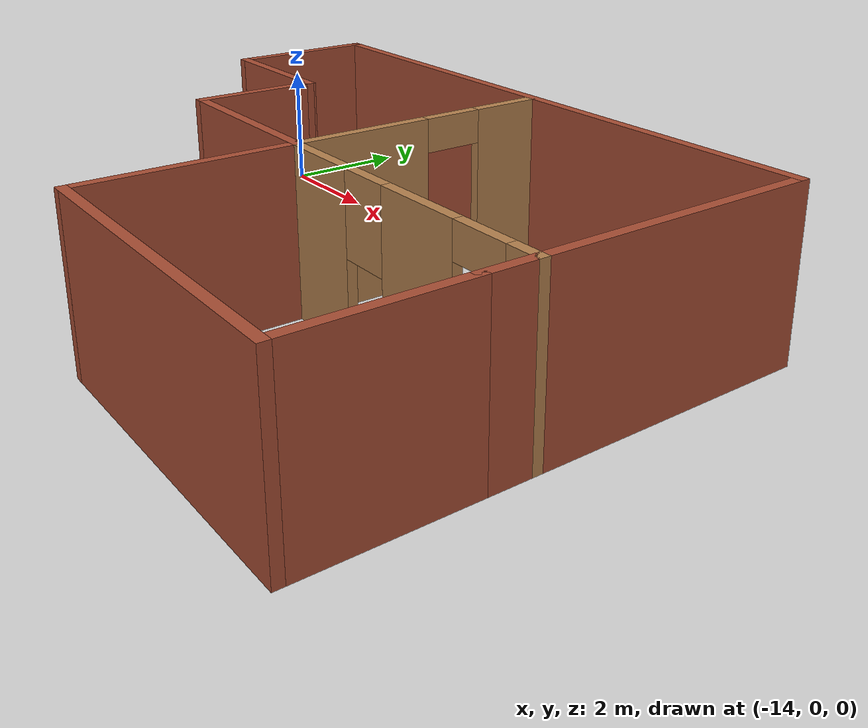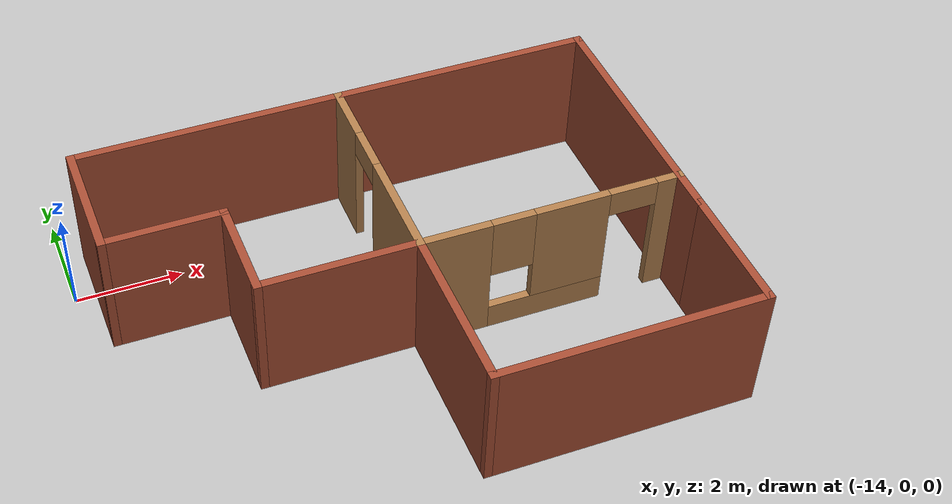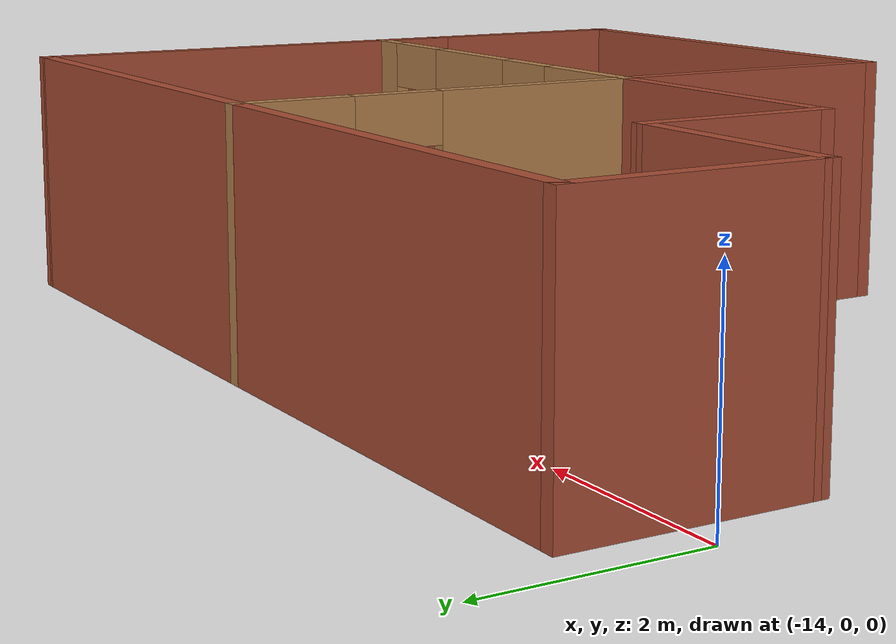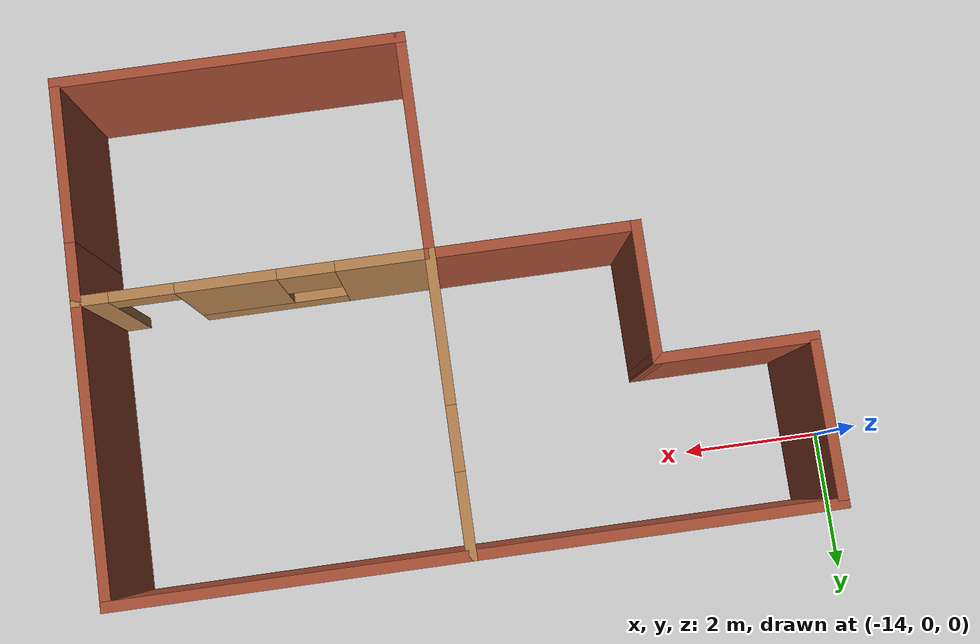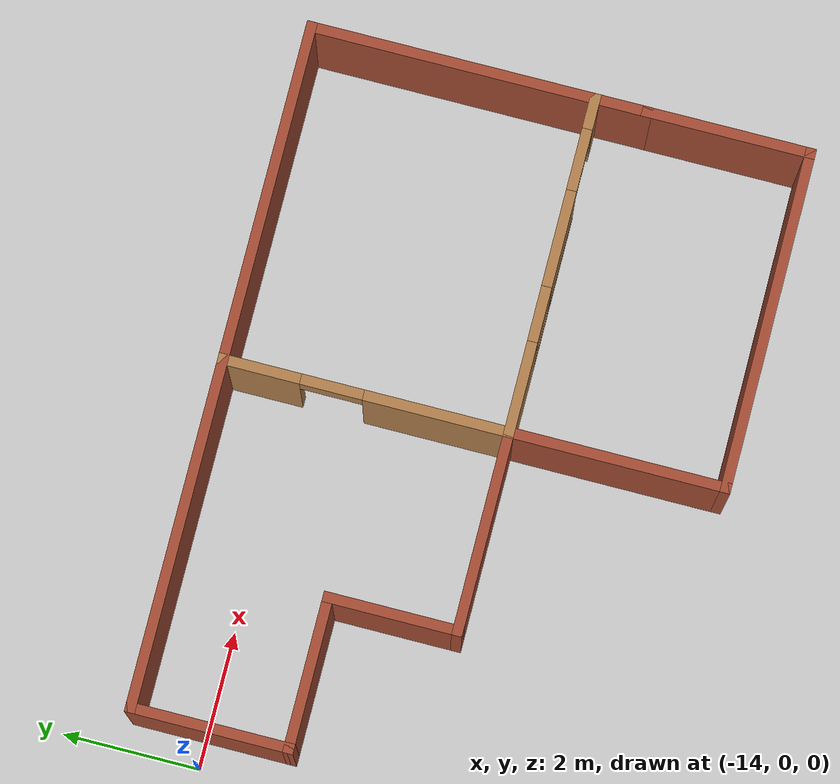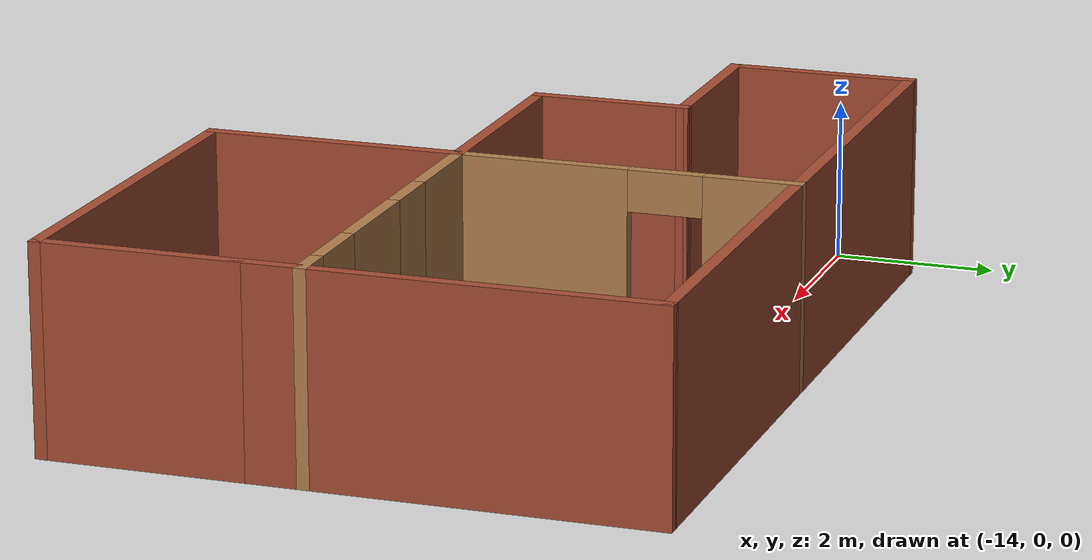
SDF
<?xml version='1.0'?>
<sdf version='1.6'>
  <model name='mybuilding'>
    <pose frame=''>-8.61188 -2.60356 0 0 -0 0</pose>
    <link name='Wall_10'>
      <collision name='Wall_10_Collision'>
        <geometry>
          <box>
            <size>2.30025 0.15 2.5</size>
          </box>
        </geometry>
        <pose frame=''>0 0 1.25 0 -0 0</pose>
      </collision>
      <visual name='Wall_10_Visual'>
        <pose frame=''>0 0 1.25 0 -0 0</pose>
        <geometry>
          <box>
            <size>2.30025 0.15 2.5</size>
          </box>
        </geometry>
        <material>
          <script>
            <uri>file://media/materials/scripts/gazebo.material</uri>
            <name>Gazebo/Bricks</name>
          </script>
          <ambient>1 1 1 1</ambient>
        </material>
        <meta>
          <layer>0</layer>
        </meta>
      </visual>
      <pose frame=''>-3.84999 1.34978 0 0 0 -3.14139</pose>
    </link>
    <link name='Wall_11'>
      <collision name='Wall_11_Collision'>
        <geometry>
          <box>
            <size>2.40056 0.15 2.5</size>
          </box>
        </geometry>
        <pose frame=''>0 0 1.25 0 -0 0</pose>
      </collision>
      <visual name='Wall_11_Visual'>
        <pose frame=''>0 0 1.25 0 -0 0</pose>
        <geometry>
          <box>
            <size>2.40056 0.15 2.5</size>
          </box>
        </geometry>
        <material>
          <script>
            <uri>file://media/materials/scripts/gazebo.material</uri>
            <name>Gazebo/Bricks</name>
          </script>
          <ambient>1 1 1 1</ambient>
        </material>
        <meta>
          <layer>0</layer>
        </meta>
      </visual>
      <pose frame=''>-4.92512 2.47456 0 0 -0 1.5708</pose>
    </link>
    <link name='Wall_13'>
      <pose frame=''>2.50013 -0.500002 0 0 -0 0</pose>
      <visual name='Wall_13_Visual_0'>
        <pose frame=''>-1.80816 0 1.25 0 -0 0</pose>
        <geometry>
          <box>
            <size>1.38368 0.15 2.5</size>
          </box>
        </geometry>
        <material>
          <script>
            <uri>file://media/materials/scripts/gazebo.material</uri>
            <name>Gazebo/Wood</name>
          </script>
          <ambient>1 1 1 1</ambient>
        </material>
        <meta>
          <layer>0</layer>
        </meta>
      </visual>
      <collision name='Wall_13_Collision_0'>
        <geometry>
          <box>
            <size>1.38368 0.15 2.5</size>
          </box>
        </geometry>
        <pose frame=''>-1.80816 0 1.25 0 -0 0</pose>
      </collision>
      <visual name='Wall_13_Visual_1'>
        <pose frame=''>2.24096 0 1.25 0 -0 0</pose>
        <geometry>
          <box>
            <size>0.518074 0.15 2.5</size>
          </box>
        </geometry>
        <material>
          <script>
            <uri>file://media/materials/scripts/gazebo.material</uri>
            <name>Gazebo/Wood</name>
          </script>
          <ambient>1 1 1 1</ambient>
        </material>
        <meta>
          <layer>0</layer>
        </meta>
      </visual>
      <collision name='Wall_13_Collision_1'>
        <geometry>
          <box>
            <size>0.518074 0.15 2.5</size>
          </box>
        </geometry>
        <pose frame=''>2.24096 0 1.25 0 -0 0</pose>
      </collision>
      <visual name='Wall_13_Visual_2'>
        <pose frame=''>-0.017199 0 0.25 0 -0 0</pose>
        <geometry>
          <box>
            <size>2.19825 0.15 0.5</size>
          </box>
        </geometry>
        <material>
          <script>
            <uri>file://media/materials/scripts/gazebo.material</uri>
            <name>Gazebo/Wood</name>
          </script>
          <ambient>1 1 1 1</ambient>
        </material>
        <meta>
          <layer>0</layer>
        </meta>
      </visual>
      <collision name='Wall_13_Collision_2'>
        <geometry>
          <box>
            <size>2.19825 0.15 0.5</size>
          </box>
        </geometry>
        <pose frame=''>-0.017199 0 0.25 0 -0 0</pose>
      </collision>
      <visual name='Wall_13_Visual_3'>
        <pose frame=''>0.382801 0 1.5 0 -0 0</pose>
        <geometry>
          <box>
            <size>1.39825 0.15 2</size>
          </box>
        </geometry>
        <material>
          <script>
            <uri>file://media/materials/scripts/gazebo.material</uri>
            <name>Gazebo/Wood</name>
          </script>
          <ambient>1 1 1 1</ambient>
        </material>
        <meta>
          <layer>0</layer>
        </meta>
      </visual>
      <collision name='Wall_13_Collision_3'>
        <geometry>
          <box>
            <size>1.39825 0.15 2</size>
          </box>
        </geometry>
        <pose frame=''>0.382801 0 1.5 0 -0 0</pose>
      </collision>
      <visual name='Wall_13_Visual_4'>
        <pose frame=''>-0.716324 0 1.9 0 -0 0</pose>
        <geometry>
          <box>
            <size>0.8 0.15 1.2</size>
          </box>
        </geometry>
        <material>
          <script>
            <uri>file://media/materials/scripts/gazebo.material</uri>
            <name>Gazebo/Wood</name>
          </script>
          <ambient>1 1 1 1</ambient>
        </material>
        <meta>
          <layer>0</layer>
        </meta>
      </visual>
      <collision name='Wall_13_Collision_4'>
        <geometry>
          <box>
            <size>0.8 0.15 1.2</size>
          </box>
        </geometry>
        <pose frame=''>-0.716324 0 1.9 0 -0 0</pose>
      </collision>
      <visual name='Wall_13_Visual_5'>
        <pose frame=''>1.53193 0 2.25 0 -0 0</pose>
        <geometry>
          <box>
            <size>0.9 0.15 0.5</size>
          </box>
        </geometry>
        <material>
          <script>
            <uri>file://media/materials/scripts/gazebo.material</uri>
            <name>Gazebo/Wood</name>
          </script>
          <ambient>1 1 1 1</ambient>
        </material>
        <meta>
          <layer>0</layer>
        </meta>
      </visual>
      <collision name='Wall_13_Collision_5'>
        <geometry>
          <box>
            <size>0.9 0.15 0.5</size>
          </box>
        </geometry>
        <pose frame=''>1.53193 0 2.25 0 -0 0</pose>
      </collision>
    </link>
    <link name='Wall_15'>
      <pose frame=''>0.075133 1.55 0 0 -0 1.5708</pose>
      <visual name='Wall_15_Visual_0'>
        <pose frame=''>-1.04383 0 1.25 0 -0 0</pose>
        <geometry>
          <box>
            <size>2.16234 0.15 2.5</size>
          </box>
        </geometry>
        <material>
          <script>
            <uri>file://media/materials/scripts/gazebo.material</uri>
            <name>Gazebo/Wood</name>
          </script>
          <ambient>1 1 1 1</ambient>
        </material>
        <meta>
          <layer>0</layer>
        </meta>
      </visual>
      <collision name='Wall_15_Collision_0'>
        <geometry>
          <box>
            <size>2.16234 0.15 2.5</size>
          </box>
        </geometry>
        <pose frame=''>-1.04383 0 1.25 0 -0 0</pose>
      </collision>
      <visual name='Wall_15_Visual_1'>
        <pose frame=''>1.53117 0 1.25 0 -0 0</pose>
        <geometry>
          <box>
            <size>1.18766 0.15 2.5</size>
          </box>
        </geometry>
        <material>
          <script>
            <uri>file://media/materials/scripts/gazebo.material</uri>
            <name>Gazebo/Wood</name>
          </script>
          <ambient>1 1 1 1</ambient>
        </material>
        <meta>
          <layer>0</layer>
        </meta>
      </visual>
      <collision name='Wall_15_Collision_1'>
        <geometry>
          <box>
            <size>1.18766 0.15 2.5</size>
          </box>
        </geometry>
        <pose frame=''>1.53117 0 1.25 0 -0 0</pose>
      </collision>
      <visual name='Wall_15_Visual_2'>
        <pose frame=''>0.487335 0 2.25 0 -0 0</pose>
        <geometry>
          <box>
            <size>0.9 0.15 0.5</size>
          </box>
        </geometry>
        <material>
          <script>
            <uri>file://media/materials/scripts/gazebo.material</uri>
            <name>Gazebo/Wood</name>
          </script>
          <ambient>1 1 1 1</ambient>
        </material>
        <meta>
          <layer>0</layer>
        </meta>
      </visual>
      <collision name='Wall_15_Collision_2'>
        <geometry>
          <box>
            <size>0.9 0.15 0.5</size>
          </box>
        </geometry>
        <pose frame=''>0.487335 0 2.25 0 -0 0</pose>
      </collision>
    </link>
    <link name='Wall_3'>
      <collision name='Wall_3_Collision'>
        <geometry>
          <box>
            <size>10 0.15 2.5</size>
          </box>
        </geometry>
        <pose frame=''>0 0 1.25 0 -0 0</pose>
      </collision>
      <visual name='Wall_3_Visual'>
        <pose frame=''>0 0 1.25 0 -0 0</pose>
        <geometry>
          <box>
            <size>10 0.15 2.5</size>
          </box>
        </geometry>
        <material>
          <script>
            <uri>file://media/materials/scripts/gazebo.material</uri>
            <name>Gazebo/Bricks</name>
          </script>
          <ambient>1 1 1 1</ambient>
        </material>
        <meta>
          <layer>0</layer>
        </meta>
      </visual>
      <pose frame=''>8e-06 3.59978 0 0 -0 4.5e-05</pose>
    </link>
    <link name='Wall_4'>
      <collision name='Wall_4_Collision'>
        <geometry>
          <box>
            <size>5 0.15 2.5</size>
          </box>
        </geometry>
        <pose frame=''>0 0 1.25 0 -0 0</pose>
      </collision>
      <visual name='Wall_4_Visual'>
        <pose frame=''>0 0 1.25 0 -0 0</pose>
        <geometry>
          <box>
            <size>5 0.15 2.5</size>
          </box>
        </geometry>
        <material>
          <script>
            <uri>file://media/materials/scripts/gazebo.material</uri>
            <name>Gazebo/Bricks</name>
          </script>
          <ambient>1 1 1 1</ambient>
        </material>
        <meta>
          <layer>0</layer>
        </meta>
      </visual>
      <pose frame=''>4.92513 1.175 0 0 0 -1.5708</pose>
    </link>
    <link name='Wall_5'>
      <collision name='Wall_5_Collision'>
        <geometry>
          <box>
            <size>2.5 0.15 2.5</size>
          </box>
        </geometry>
        <pose frame=''>0 0 1.25 0 -0 0</pose>
      </collision>
      <visual name='Wall_5_Visual'>
        <pose frame=''>0 0 1.25 0 -0 0</pose>
        <geometry>
          <box>
            <size>2.5 0.15 2.5</size>
          </box>
        </geometry>
        <material>
          <script>
            <uri>file://media/materials/scripts/gazebo.material</uri>
            <name>Gazebo/Bricks</name>
          </script>
          <ambient>1 1 1 1</ambient>
        </material>
        <meta>
          <layer>0</layer>
        </meta>
      </visual>
      <pose frame=''>4.92513 -2.425 0 0 0 -1.5708</pose>
    </link>
    <link name='Wall_6'>
      <collision name='Wall_6_Collision'>
        <geometry>
          <box>
            <size>5 0.15 2.5</size>
          </box>
        </geometry>
        <pose frame=''>0 0 1.25 0 -0 0</pose>
      </collision>
      <visual name='Wall_6_Visual'>
        <pose frame=''>0 0 1.25 0 -0 0</pose>
        <geometry>
          <box>
            <size>5 0.15 2.5</size>
          </box>
        </geometry>
        <material>
          <script>
            <uri>file://media/materials/scripts/gazebo.material</uri>
            <name>Gazebo/Bricks</name>
          </script>
          <ambient>1 1 1 1</ambient>
        </material>
        <meta>
          <layer>0</layer>
        </meta>
      </visual>
      <pose frame=''>2.50013 -3.6 0 0 -0 3.14159</pose>
    </link>
    <link name='Wall_7'>
      <collision name='Wall_7_Collision'>
        <geometry>
          <box>
            <size>3.25 0.15 2.5</size>
          </box>
        </geometry>
        <pose frame=''>0 0 1.25 0 -0 0</pose>
      </collision>
      <visual name='Wall_7_Visual'>
        <pose frame=''>0 0 1.25 0 -0 0</pose>
        <geometry>
          <box>
            <size>3.25 0.15 2.5</size>
          </box>
        </geometry>
        <material>
          <script>
            <uri>file://media/materials/scripts/gazebo.material</uri>
            <name>Gazebo/Bricks</name>
          </script>
          <ambient>1 1 1 1</ambient>
        </material>
        <meta>
          <layer>0</layer>
        </meta>
      </visual>
      <pose frame=''>0.075133 -2.05 0 0 -0 1.5708</pose>
    </link>
    <link name='Wall_8'>
      <collision name='Wall_8_Collision'>
        <geometry>
          <box>
            <size>3 0.15 2.5</size>
          </box>
        </geometry>
        <pose frame=''>0 0 1.25 0 -0 0</pose>
      </collision>
      <visual name='Wall_8_Visual'>
        <pose frame=''>0 0 1.25 0 -0 0</pose>
        <geometry>
          <box>
            <size>3 0.15 2.5</size>
          </box>
        </geometry>
        <material>
          <script>
            <uri>file://media/materials/scripts/gazebo.material</uri>
            <name>Gazebo/Bricks</name>
          </script>
          <ambient>1 1 1 1</ambient>
        </material>
        <meta>
          <layer>0</layer>
        </meta>
      </visual>
      <pose frame=''>-1.34987 -0.500002 0 0 -0 3.14159</pose>
    </link>
    <link name='Wall_9'>
      <collision name='Wall_9_Collision'>
        <geometry>
          <box>
            <size>2 0.15 2.5</size>
          </box>
        </geometry>
        <pose frame=''>0 0 1.25 0 -0 0</pose>
      </collision>
      <visual name='Wall_9_Visual'>
        <pose frame=''>0 0 1.25 0 -0 0</pose>
        <geometry>
          <box>
            <size>2 0.15 2.5</size>
          </box>
        </geometry>
        <material>
          <script>
            <uri>file://media/materials/scripts/gazebo.material</uri>
            <name>Gazebo/Bricks</name>
          </script>
          <ambient>1 1 1 1</ambient>
        </material>
        <meta>
          <layer>0</layer>
        </meta>
      </visual>
      <pose frame=''>-2.77487 0.424998 0 0 -0 1.5708</pose>
    </link>
    <static>1</static>
  </model>
</sdf>
